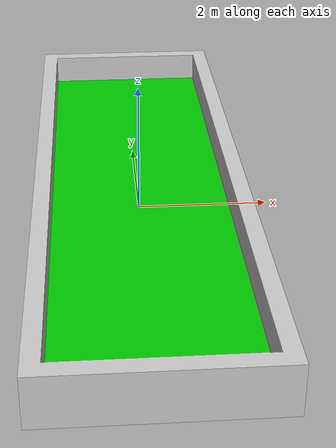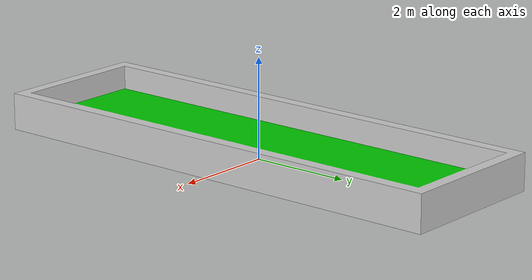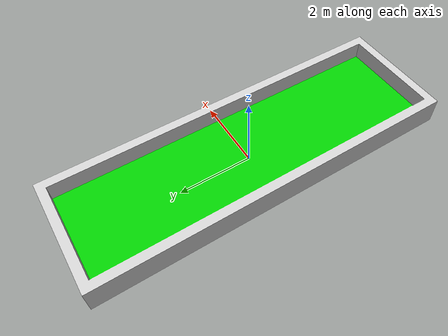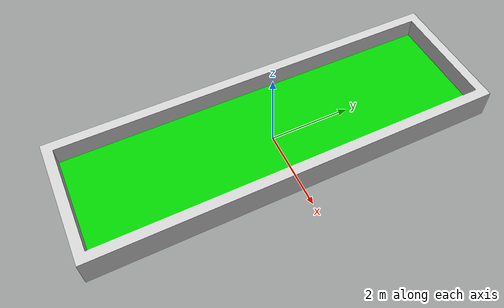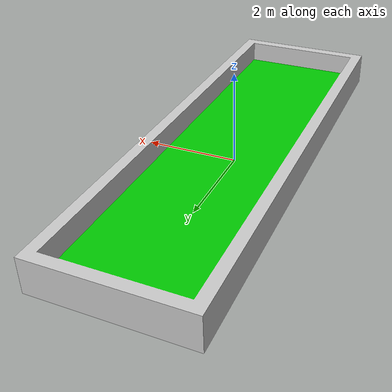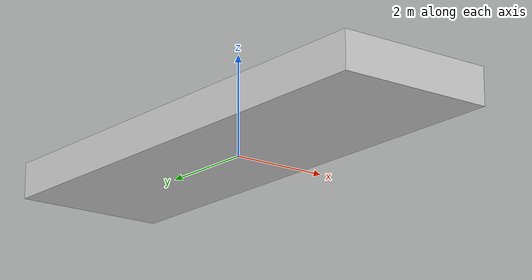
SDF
<?xml version="1.0" ?>
<sdf version="1.7">
    <model name='acidpool'>
      <pose frame=''>0 0 0 0 0 0</pose>
      <static>1</static>
      <link name='body'>
        <inertial>
          <mass>1</mass>
          <inertia>
            <ixx>0.166667</ixx>
            <ixy>0</ixy>
            <ixz>0</ixz>
            <iyy>0.166667</iyy>
            <iyz>0</iyz>
            <izz>0.166667</izz>
          </inertia>
        </inertial>
        <collision name='collision'>
          <geometry>
            <mesh>
              <uri>model://acidpool/meshes/acid_pool.dae</uri>
            </mesh>
          </geometry>
          <max_contacts>10</max_contacts>
          <surface>
            <contact>
              <ode/>
            </contact>
            <bounce/>
            <friction>
              <torsional>
                <ode/>
              </torsional>
              <ode/>
            </friction>
          </surface>
        </collision>
        <visual name='visual'>
          <geometry>
            <mesh>
              <uri>model://acidpool/meshes/acid_pool.dae</uri>
            </mesh>
          </geometry>
        </visual>
        <self_collide>0</self_collide>
        <enable_wind>0</enable_wind>
        <kinematic>0</kinematic>
        <cast_shadows>false</cast_shadows>
      </link>
    </model>
</sdf>
